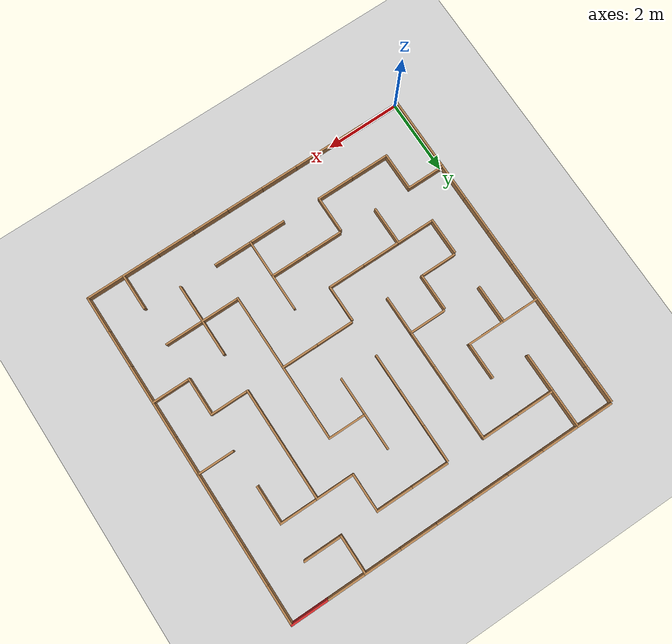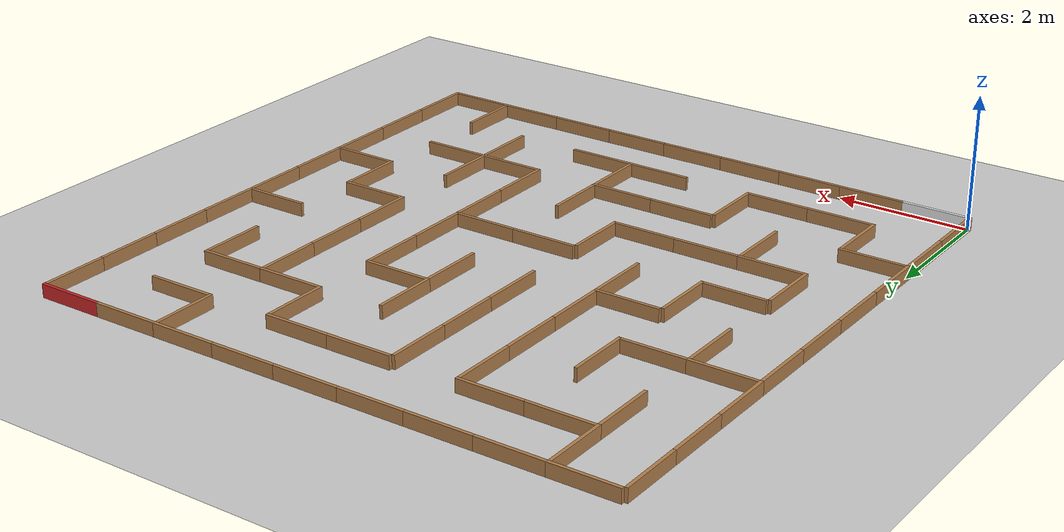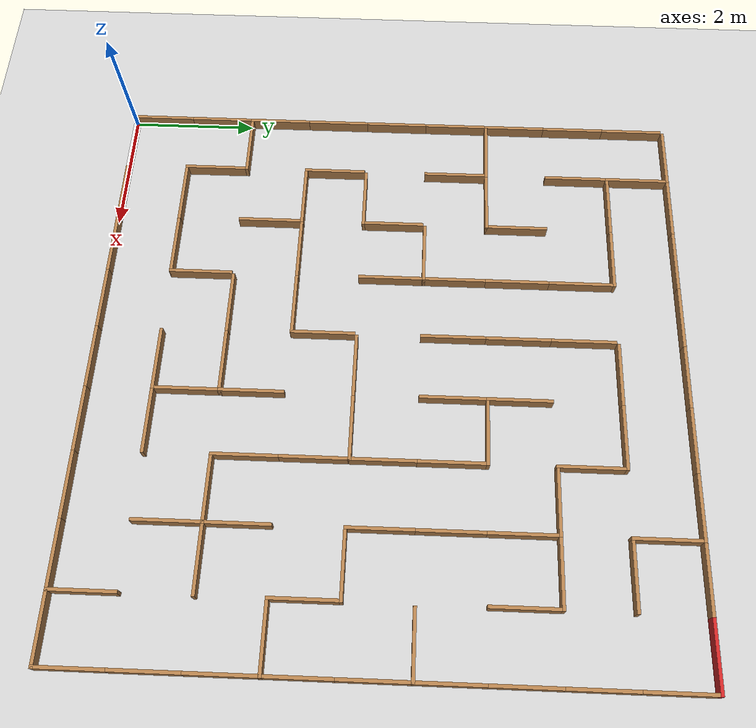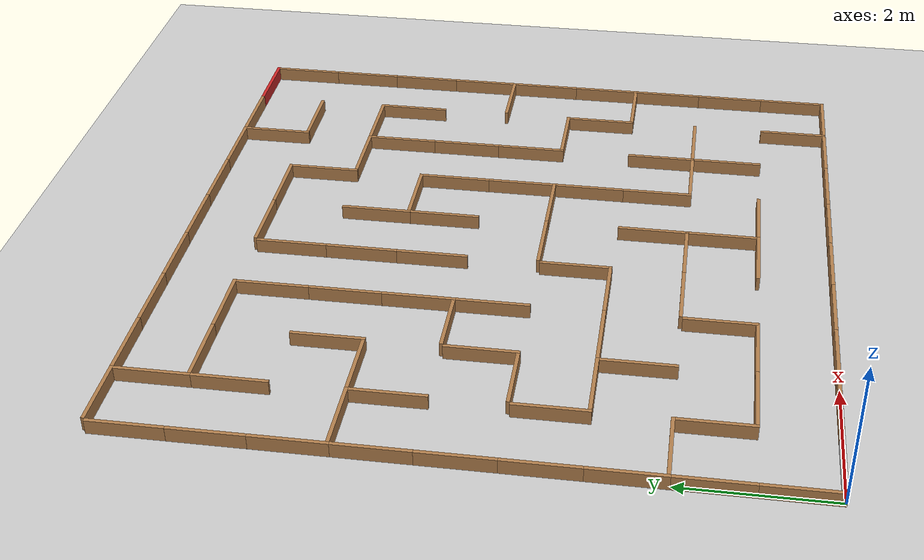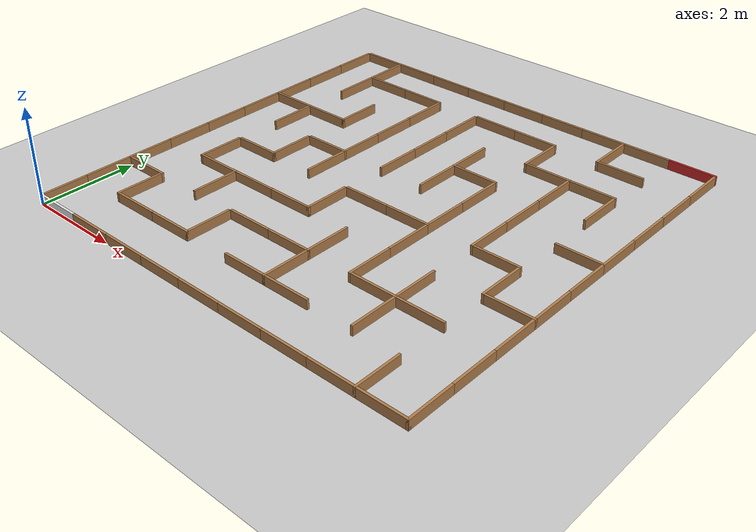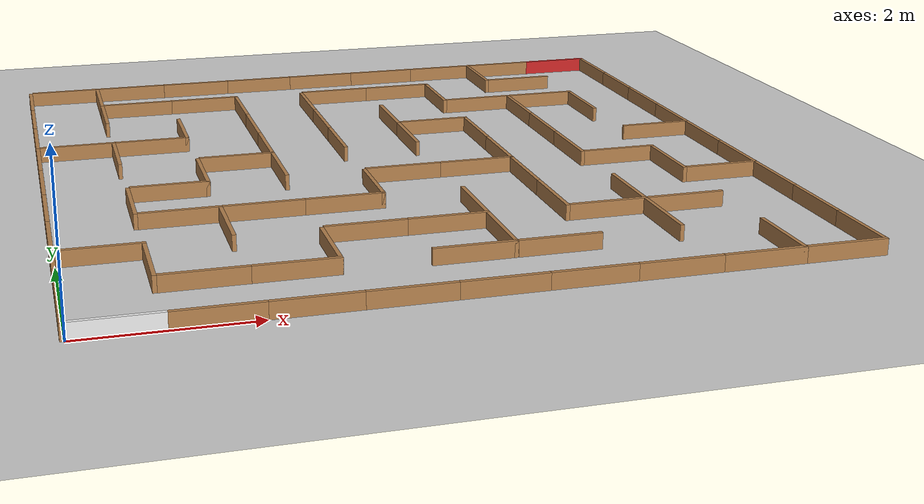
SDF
<sdf version="1.7">
 <world name="world_9_9">
  <include><name>sun</name><uri>model://sun</uri></include>
  <include><name>ground</name><uri>model://ground_plane</uri></include>
  <include><name>labyrinth_9_9</name><uri>model://labyrinth_9_9</uri></include>
  <scene><shadows>0</shadows></scene>
 </world>
</sdf>

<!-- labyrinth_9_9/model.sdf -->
<sdf version="1.7">
    <model name="labyrinth">

			<include><name>0_8v</name><uri>model://wall</uri><pose>0 8 0 0 0 1.5707963267948966</pose></include>

			<include><name>0_9h</name><uri>model://wall</uri><pose>0 9 0 0 0 0</pose></include>

			<include><name>0_7v</name><uri>model://wall</uri><pose>0 7 0 0 0 1.5707963267948966</pose></include>

			<include><name>0_6h</name><uri>model://wall</uri><pose>0 6 0 0 0 0</pose></include>

			<include><name>0_6v</name><uri>model://wall</uri><pose>0 6 0 0 0 1.5707963267948966</pose></include>

			<include><name>0_5v</name><uri>model://wall</uri><pose>0 5 0 0 0 1.5707963267948966</pose></include>

			<include><name>0_4v</name><uri>model://wall</uri><pose>0 4 0 0 0 1.5707963267948966</pose></include>

			<include><name>0_3v</name><uri>model://wall</uri><pose>0 3 0 0 0 1.5707963267948966</pose></include>

			<include><name>0_2h</name><uri>model://wall</uri><pose>0 2 0 0 0 0</pose></include>

			<include><name>0_2v</name><uri>model://wall</uri><pose>0 2 0 0 0 1.5707963267948966</pose></include>

			<include><name>0_1v</name><uri>model://wall</uri><pose>0 1 0 0 0 1.5707963267948966</pose></include>

			<include><name>0_0h</name><uri>model://wall_White</uri><pose>0 0 0 0 0 0</pose></include>

			<include><name>0_0v</name><uri>model://wall</uri><pose>0 0 0 0 0 1.5707963267948966</pose></include>

			<include><name>1_8h</name><uri>model://wall</uri><pose>1 8 0 0 0 0</pose></include>

			<include><name>1_8v</name><uri>model://wall</uri><pose>1 8 0 0 0 1.5707963267948966</pose></include>

			<include><name>1_9h</name><uri>model://wall</uri><pose>1 9 0 0 0 0</pose></include>

			<include><name>1_7v</name><uri>model://wall</uri><pose>1 7 0 0 0 1.5707963267948966</pose></include>

			<include><name>1_6h</name><uri>model://wall</uri><pose>1 6 0 0 0 0</pose></include>

			<include><name>1_5v</name><uri>model://wall</uri><pose>1 5 0 0 0 1.5707963267948966</pose></include>

			<include><name>1_4h</name><uri>model://wall</uri><pose>1 4 0 0 0 0</pose></include>

			<include><name>1_3h</name><uri>model://wall</uri><pose>1 3 0 0 0 0</pose></include>

			<include><name>1_3v</name><uri>model://wall</uri><pose>1 3 0 0 0 1.5707963267948966</pose></include>

			<include><name>1_1h</name><uri>model://wall</uri><pose>1 1 0 0 0 0</pose></include>

			<include><name>1_1v</name><uri>model://wall</uri><pose>1 1 0 0 0 1.5707963267948966</pose></include>

			<include><name>1_0h</name><uri>model://wall</uri><pose>1 0 0 0 0 0</pose></include>

			<include><name>2_8h</name><uri>model://wall</uri><pose>2 8 0 0 0 0</pose></include>

			<include><name>2_9h</name><uri>model://wall</uri><pose>2 9 0 0 0 0</pose></include>

			<include><name>2_6v</name><uri>model://wall</uri><pose>2 6 0 0 0 1.5707963267948966</pose></include>

			<include><name>2_5h</name><uri>model://wall</uri><pose>2 5 0 0 0 0</pose></include>

			<include><name>2_4v</name><uri>model://wall</uri><pose>2 4 0 0 0 1.5707963267948966</pose></include>

			<include><name>2_3h</name><uri>model://wall</uri><pose>2 3 0 0 0 0</pose></include>

			<include><name>2_2v</name><uri>model://wall</uri><pose>2 2 0 0 0 1.5707963267948966</pose></include>

			<include><name>2_1h</name><uri>model://wall</uri><pose>2 1 0 0 0 0</pose></include>

			<include><name>2_0h</name><uri>model://wall</uri><pose>2 0 0 0 0 0</pose></include>

			<include><name>3_9h</name><uri>model://wall</uri><pose>3 9 0 0 0 0</pose></include>

			<include><name>3_7v</name><uri>model://wall</uri><pose>3 7 0 0 0 1.5707963267948966</pose></include>

			<include><name>3_6v</name><uri>model://wall</uri><pose>3 6 0 0 0 1.5707963267948966</pose></include>

			<include><name>3_5v</name><uri>model://wall</uri><pose>3 5 0 0 0 1.5707963267948966</pose></include>

			<include><name>3_4v</name><uri>model://wall</uri><pose>3 4 0 0 0 1.5707963267948966</pose></include>

			<include><name>3_3h</name><uri>model://wall</uri><pose>3 3 0 0 0 0</pose></include>

			<include><name>3_2h</name><uri>model://wall</uri><pose>3 2 0 0 0 0</pose></include>

			<include><name>3_1v</name><uri>model://wall</uri><pose>3 1 0 0 0 1.5707963267948966</pose></include>

			<include><name>3_0h</name><uri>model://wall</uri><pose>3 0 0 0 0 0</pose></include>

			<include><name>4_8h</name><uri>model://wall</uri><pose>4 8 0 0 0 0</pose></include>

			<include><name>4_9h</name><uri>model://wall</uri><pose>4 9 0 0 0 0</pose></include>

			<include><name>4_7v</name><uri>model://wall</uri><pose>4 7 0 0 0 1.5707963267948966</pose></include>

			<include><name>4_6v</name><uri>model://wall</uri><pose>4 6 0 0 0 1.5707963267948966</pose></include>

			<include><name>4_5v</name><uri>model://wall</uri><pose>4 5 0 0 0 1.5707963267948966</pose></include>

			<include><name>4_4h</name><uri>model://wall</uri><pose>4 4 0 0 0 0</pose></include>

			<include><name>4_3v</name><uri>model://wall</uri><pose>4 3 0 0 0 1.5707963267948966</pose></include>

			<include><name>4_2h</name><uri>model://wall</uri><pose>4 2 0 0 0 0</pose></include>

			<include><name>4_1h</name><uri>model://wall</uri><pose>4 1 0 0 0 0</pose></include>

			<include><name>4_0h</name><uri>model://wall</uri><pose>4 0 0 0 0 0</pose></include>

			<include><name>5_8h</name><uri>model://wall</uri><pose>5 8 0 0 0 0</pose></include>

			<include><name>5_9h</name><uri>model://wall</uri><pose>5 9 0 0 0 0</pose></include>

			<include><name>5_6h</name><uri>model://wall</uri><pose>5 6 0 0 0 0</pose></include>

			<include><name>5_6v</name><uri>model://wall</uri><pose>5 6 0 0 0 1.5707963267948966</pose></include>

			<include><name>5_5v</name><uri>model://wall</uri><pose>5 5 0 0 0 1.5707963267948966</pose></include>

			<include><name>5_4h</name><uri>model://wall</uri><pose>5 4 0 0 0 0</pose></include>

			<include><name>5_2v</name><uri>model://wall</uri><pose>5 2 0 0 0 1.5707963267948966</pose></include>

			<include><name>5_1h</name><uri>model://wall</uri><pose>5 1 0 0 0 0</pose></include>

			<include><name>5_1v</name><uri>model://wall</uri><pose>5 1 0 0 0 1.5707963267948966</pose></include>

			<include><name>5_0h</name><uri>model://wall</uri><pose>5 0 0 0 0 0</pose></include>

			<include><name>6_9h</name><uri>model://wall</uri><pose>6 9 0 0 0 0</pose></include>

			<include><name>6_7h</name><uri>model://wall</uri><pose>6 7 0 0 0 0</pose></include>

			<include><name>6_7v</name><uri>model://wall</uri><pose>6 7 0 0 0 1.5707963267948966</pose></include>

			<include><name>6_5v</name><uri>model://wall</uri><pose>6 5 0 0 0 1.5707963267948966</pose></include>

			<include><name>6_4v</name><uri>model://wall</uri><pose>6 4 0 0 0 1.5707963267948966</pose></include>

			<include><name>6_3v</name><uri>model://wall</uri><pose>6 3 0 0 0 1.5707963267948966</pose></include>

			<include><name>6_2h</name><uri>model://wall</uri><pose>6 2 0 0 0 0</pose></include>

			<include><name>6_2v</name><uri>model://wall</uri><pose>6 2 0 0 0 1.5707963267948966</pose></include>

			<include><name>6_0h</name><uri>model://wall</uri><pose>6 0 0 0 0 0</pose></include>

			<include><name>7_8h</name><uri>model://wall</uri><pose>7 8 0 0 0 0</pose></include>

			<include><name>7_8v</name><uri>model://wall</uri><pose>7 8 0 0 0 1.5707963267948966</pose></include>

			<include><name>7_9h</name><uri>model://wall</uri><pose>7 9 0 0 0 0</pose></include>

			<include><name>7_7h</name><uri>model://wall</uri><pose>7 7 0 0 0 0</pose></include>

			<include><name>7_6v</name><uri>model://wall</uri><pose>7 6 0 0 0 1.5707963267948966</pose></include>

			<include><name>7_5v</name><uri>model://wall</uri><pose>7 5 0 0 0 1.5707963267948966</pose></include>

			<include><name>7_4h</name><uri>model://wall</uri><pose>7 4 0 0 0 0</pose></include>

			<include><name>7_4v</name><uri>model://wall</uri><pose>7 4 0 0 0 1.5707963267948966</pose></include>

			<include><name>7_2h</name><uri>model://wall</uri><pose>7 2 0 0 0 0</pose></include>

			<include><name>7_2v</name><uri>model://wall</uri><pose>7 2 0 0 0 1.5707963267948966</pose></include>

			<include><name>7_1v</name><uri>model://wall</uri><pose>7 1 0 0 0 1.5707963267948966</pose></include>

			<include><name>7_0h</name><uri>model://wall</uri><pose>7 0 0 0 0 0</pose></include>

			<include><name>8_9h</name><uri>model://wall_Red</uri><pose>8 9 0 0 0 0</pose></include>

			<include><name>9_8v</name><uri>model://wall</uri><pose>9 8 0 0 0 1.5707963267948966</pose></include>

			<include><name>9_7v</name><uri>model://wall</uri><pose>9 7 0 0 0 1.5707963267948966</pose></include>

			<include><name>8_6v</name><uri>model://wall</uri><pose>8 6 0 0 0 1.5707963267948966</pose></include>

			<include><name>9_6v</name><uri>model://wall</uri><pose>9 6 0 0 0 1.5707963267948966</pose></include>

			<include><name>8_5h</name><uri>model://wall</uri><pose>8 5 0 0 0 0</pose></include>

			<include><name>9_5v</name><uri>model://wall</uri><pose>9 5 0 0 0 1.5707963267948966</pose></include>

			<include><name>9_4v</name><uri>model://wall</uri><pose>9 4 0 0 0 1.5707963267948966</pose></include>

			<include><name>8_3h</name><uri>model://wall</uri><pose>8 3 0 0 0 0</pose></include>

			<include><name>8_3v</name><uri>model://wall</uri><pose>8 3 0 0 0 1.5707963267948966</pose></include>

			<include><name>9_3v</name><uri>model://wall</uri><pose>9 3 0 0 0 1.5707963267948966</pose></include>

			<include><name>9_2v</name><uri>model://wall</uri><pose>9 2 0 0 0 1.5707963267948966</pose></include>

			<include><name>9_1v</name><uri>model://wall</uri><pose>9 1 0 0 0 1.5707963267948966</pose></include>

			<include><name>8_0h</name><uri>model://wall</uri><pose>8 0 0 0 0 0</pose></include>

			<include><name>8_0v</name><uri>model://wall</uri><pose>8 0 0 0 0 1.5707963267948966</pose></include>

			<include><name>9_0v</name><uri>model://wall</uri><pose>9 0 0 0 0 1.5707963267948966</pose></include>

	</model>
</sdf>

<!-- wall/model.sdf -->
<sdf version="1.7">
	<model name="wall_Wood">
		<link name="link">
			<visual name="visual">

				<pose>0.5 0.025 0.1 0 0 0</pose>

				<geometry>
					<box>
						<size>1 0.05 0.2</size>
					</box>
				</geometry>

				<material>
					<script>
						<uri>file://media/materials/scripts/gazebo.material</uri>
						<name>Gazebo/Wood</name>
					</script>
				</material>
			</visual>
			<collision name="collision">

				<pose>0.5 0.025 0.1 0 0 0</pose>

				<geometry>
					<box>
						<size>1 0.05 0.2</size>
					</box>
				</geometry>

				<laser_retro>1</laser_retro>
			</collision>
		</link>
	</model>
</sdf>

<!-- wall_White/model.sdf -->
<sdf version="1.7">
	<model name="wall_White">
		<link name="link">
			<visual name="visual">

				<pose>0.5 0.025 0.1 0 0 0</pose>

				<geometry>
					<box>
						<size>1 0.05 0.2</size>
					</box>
				</geometry>

				<material>
					<script>
						<uri>file://media/materials/scripts/gazebo.material</uri>
						<name>Gazebo/White</name>
					</script>
				</material>
			</visual>
			<collision name="collision">

				<pose>0.5 0.025 0.1 0 0 0</pose>

				<geometry>
					<box>
						<size>1 0.05 0.2</size>
					</box>
				</geometry>

				<laser_retro>3</laser_retro>
			</collision>
		</link>
	</model>
</sdf>

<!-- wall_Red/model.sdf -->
<sdf version="1.7">
	<model name="wall_Red">
		<link name="link">
			<visual name="visual">

				<pose>0.5 0.025 0.1 0 0 0</pose>

				<geometry>
					<box>
						<size>1 0.05 0.2</size>
					</box>
				</geometry>

				<material>
					<script>
						<uri>file://media/materials/scripts/gazebo.material</uri>
						<name>Gazebo/Red</name>
					</script>
				</material>
			</visual>
			<collision name="collision">

				<pose>0.5 0.025 0.1 0 0 0</pose>

				<geometry>
					<box>
						<size>1 0.05 0.2</size>
					</box>
				</geometry>

				<laser_retro>2</laser_retro>
			</collision>
			<sensor name='sensor_contact_wall' type='contact'>
				<contact><collision>collision</collision></contact>
			</sensor>
		</link>
		<plugin filename="libTouchPlugin.so" name='plugin_touch'>
			<sensor>sensor_contact_wall</sensor>
			<target>tb3</target>
			<namespace>finish_wall</namespace>
			<time>0.00001</time>
			<enabled>true</enabled>
		</plugin>
	</model>
</sdf>
